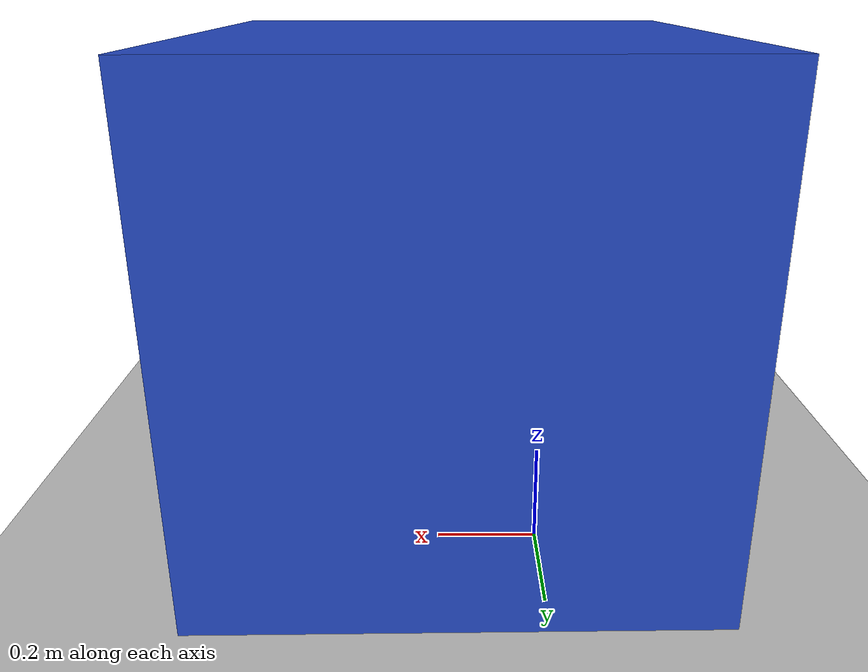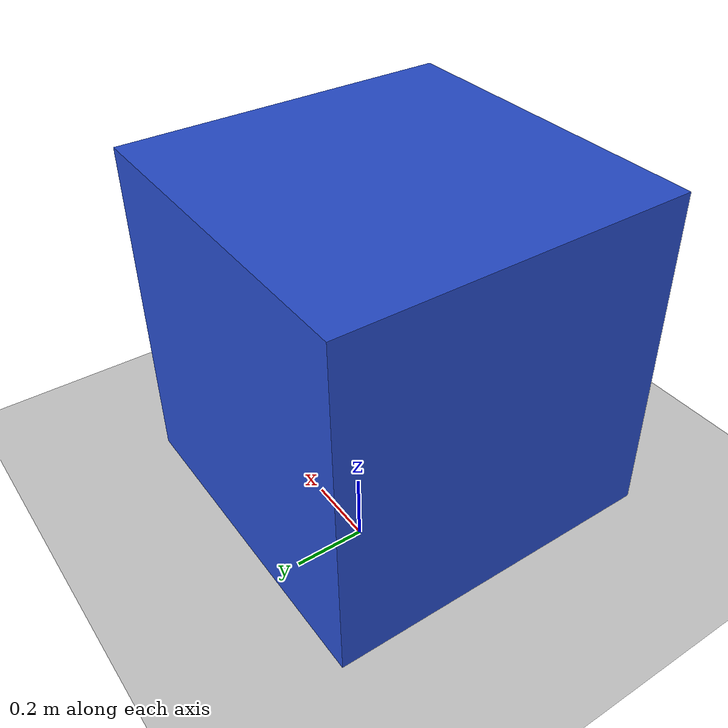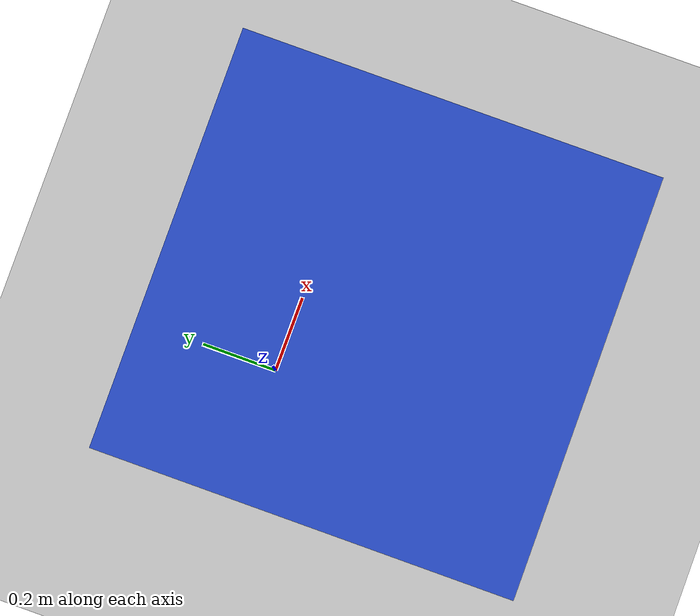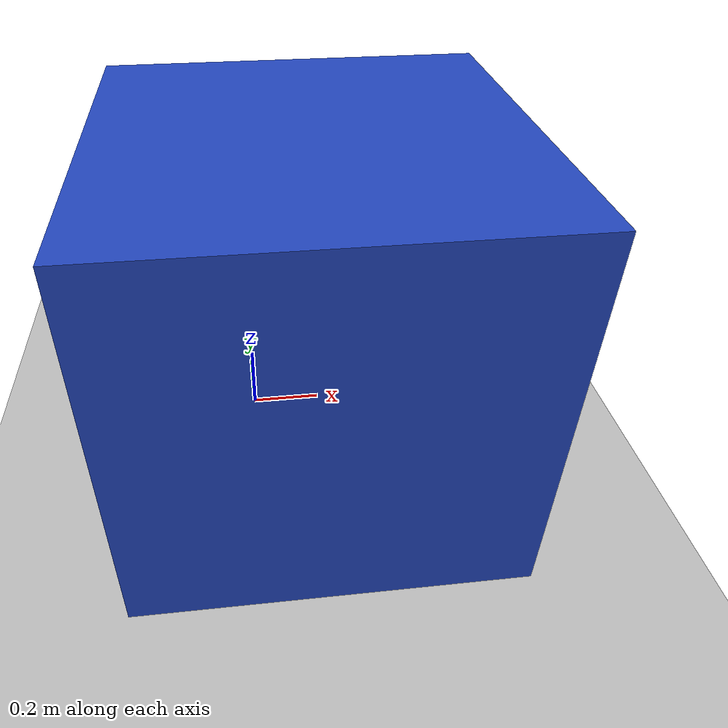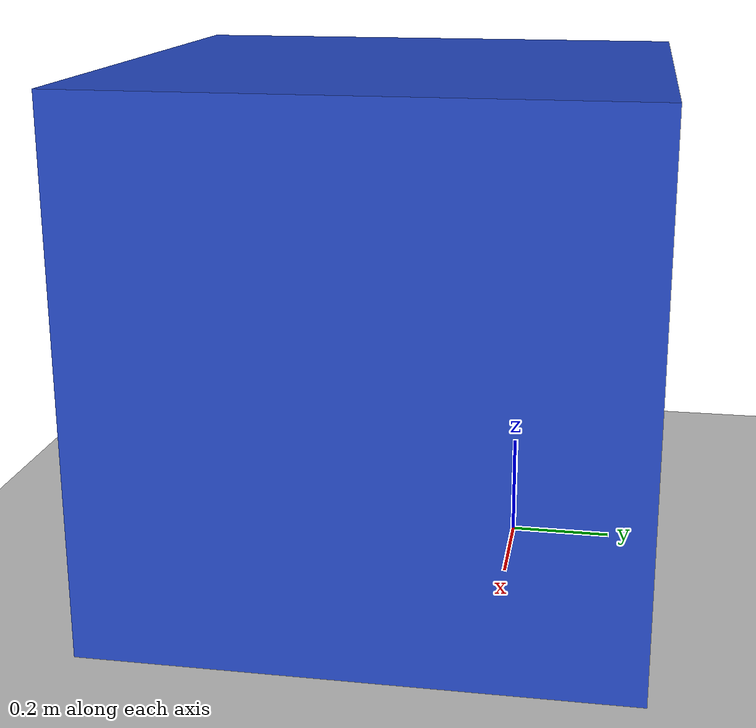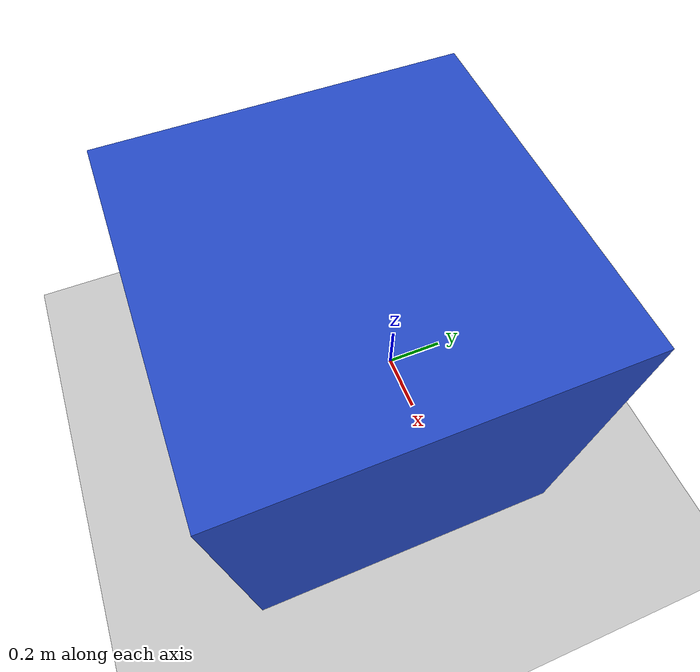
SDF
<sdf version="1.7">
 <world name="default">
  <light name="sun" type="directional">
   <pose>0 0 10 0 -0 0</pose>
   <diffuse>0.8 0.8 0.8 1</diffuse>
   <specular>0.2 0.2 0.2 1</specular>
   <attenuation>
    <range>1000</range>
    <constant>0.9</constant>
    <linear>0.01</linear>
    <quadratic>0.001</quadratic>
   </attenuation>
   <direction>-0.5 0.1 -0.9</direction>
   <spot><inner_angle>0</inner_angle><outer_angle>0</outer_angle><falloff>0</falloff></spot>
  </light>
  <model name="ground_plane">
   <static>1</static>
   <link name="link">
    <collision name="collision">
     <geometry><plane><normal>0 0 1</normal><size>100 100</size></plane></geometry>
     <surface>
      <contact><collide_bitmask>65535</collide_bitmask></contact>
      <friction><ode><mu>100</mu><mu2>50</mu2></ode></friction>
     </surface>
    </collision>
    <visual name="visual">
     <cast_shadows>0</cast_shadows>
     <geometry><plane><normal>0 0 1</normal><size>100 100</size></plane></geometry>
     <material>
      <script><uri>file://media/materials/scripts/gazebo.material</uri><name>Gazebo/Grey</name></script>
     </material>
    </visual>
   </link>
  </model>
  <gravity>0 0 -9.8</gravity>
  <magnetic_field>6e-06 2.3e-05 -4.2e-05</magnetic_field>
  <atmosphere type="adiabatic"/>
  <physics type="ode">
   <max_step_size>0.001</max_step_size>
   <real_time_factor>1</real_time_factor>
   <real_time_update_rate>1000</real_time_update_rate>
  </physics>
  <scene><ambient>0.4 0.4 0.4 1</ambient><background>0.7 0.7 0.7 1</background><shadows>1</shadows></scene>
  <audio><device>default</device></audio>
  <spherical_coordinates>
   <surface_model>EARTH_WGS84</surface_model>
   <latitude_deg>0</latitude_deg>
   <longitude_deg>0</longitude_deg>
   <elevation>0</elevation>
   <heading_deg>0</heading_deg>
  </spherical_coordinates>
  <model name="box_moving">
   <pose>0.161194 -0.220553 0.5 0 -0 0</pose>
   <static>0</static>
   <link name="base_link">
    <inertial>
     <mass>1</mass>
     <pose>0 0 -0.4 0 -0 0</pose>
     <inertia><ixx>0.16</ixx><ixy>0</ixy><ixz>0</ixz><iyy>0.16</iyy><iyz>0</iyz><izz>0.16</izz></inertia>
    </inertial>
    <visual name="visual">
     <geometry><box><size>1 1 1</size></box></geometry>
     <material>
      <script><uri>file://media/materials/scripts/gazebo.material</uri><name>Gazebo/Blue</name></script>
     </material>
    </visual>
    <collision name="collision">
     <geometry><box><size>1 1 1</size></box></geometry>
     <surface><friction><ode><mu>0.1</mu><mu2>0.1</mu2></ode></friction></surface>
    </collision>
   </link>
   <plugin name="object_controller" filename="libgazebo_ros_planar_move.so">
    <ros>
     <namespace>/</namespace>
     <remapping>cmd_vel:=box_cmd_vel</remapping>
     <remapping>odom:=box_odom</remapping>
    </ros>
    <update_rate>100</update_rate>
    <publish_rate>10</publish_rate>
    <publish_odom>1</publish_odom>
    <publish_odom_tf>1</publish_odom_tf>
    <odometry_frame>box_odom</odometry_frame>
    <robot_base_frame>base_link</robot_base_frame>
    <covariance_x>0.0001</covariance_x>
    <covariance_y>0.0001</covariance_y>
    <covariance_yaw>0.01</covariance_yaw>
   </plugin>
  </model>
 </world>
</sdf>
